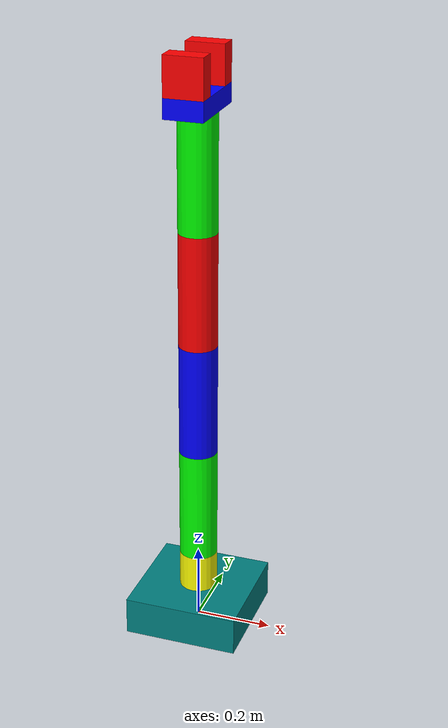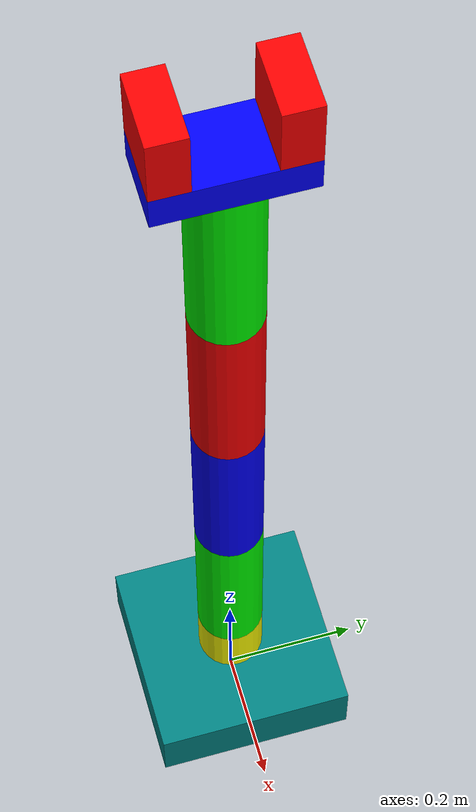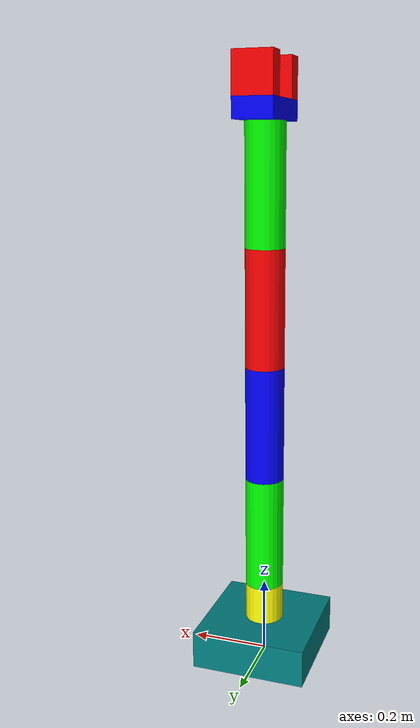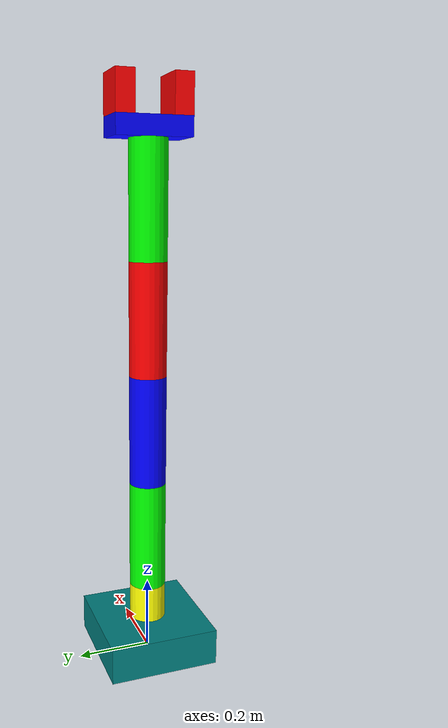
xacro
<?xml version="1.0"?>
<robot xmlns:xacro="http://www.ros.org/wiki/xacro" name="arm">
    <xacro:arg name="initial_positions_file" default="initial_positions.yaml" />

    <!-- Import arm urdf file -->
    <xacro:include filename="$(find arm1)/urdf/robot_arm.urdf" />

    <!--添加Gazebo所需的专有标签-->
    <gazebo>
        <!--添加world-joint使机械臂固定在仿真场景中-->
        <joint name="world_joint" type="fixed">
            <parent>world</parent>
            <child>base_link</child>
        </joint>
        <plugin filename="gz_ros2_control-system" name="gz_ros2_control::GazeboSimROS2ControlPlugin">
            <parameters>$(find robot_arm_config)/config/ros2_controllers.yaml</parameters>
        </plugin>
    </gazebo>
    <gazebo reference="hand_right_link">
		<mu1>20.0</mu1>
		<mu2>20.0</mu2>
		<kp>30000</kp>
		<kd>15</kd>
	</gazebo>
	<gazebo reference="hand_left_link">
		<mu1>20.0</mu1>
		<mu2>20.0</mu2>
		<kp>30000</kp>
		<kd>15</kd>
	</gazebo>

    <!-- Import control_xacro -->
    <xacro:include filename="arm.gazebo.ros2_control.xacro" />

    <xacro:arm_ros2_control name="GazeboSimSystem"
        initial_positions_file="$(arg initial_positions_file)" />

</robot>

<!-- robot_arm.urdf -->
<robot name="arm">
	<link name="base_link">
		<inertial>
			<origin xyz="0.0 0.0 0.05" rpy="0.0 0.0 0.0"></origin>
			<mass value="1"></mass>
			<inertia ixx="0.01" ixy="0.0" ixz="0.0" iyy="0.01" iyz="0.0" izz="0.001"></inertia>
		</inertial>
		<visual>
			<origin xyz="0.0 0.0 0.05" rpy="0.0 0.0 0.0"></origin>
			<geometry>
				<box size="0.3 0.3 0.1"></box>
			</geometry>
			<material name="Cyan1">
				<color rgba="0 0.5 0.5 1"></color>
			</material>
		</visual>
		<collision>
			<origin xyz="0.0 0.0 0.05" rpy="0.0 0.0 0.0"></origin>
			<geometry>
				<box size="0.3 0.3 0.1"></box>
			</geometry>
		</collision>
	</link>
	<link name="link1">
		<inertial>
			<origin xyz="0.0 0.0 0.0" rpy="0.0 0.0 0.0"></origin>
			<mass value="1"></mass>
			<inertia ixx="0.01" ixy="0.0" ixz="0.0" iyy="0.01" iyz="0.0" izz="0.001"></inertia>
		</inertial>
		<visual>
			<origin xyz="0.0 0.0 0.05" rpy="0.0 0.0 0.0"></origin>
			<geometry>
				<cylinder radius="0.05" length="0.1"></cylinder>
			</geometry>
			<material name="Cyan2">
				<color rgba="1.0 1.0 0.0 1.0"></color>
			</material>
		</visual>
		<collision>
			<origin xyz="0.0 0.0 0.0" rpy="0.0 0.0 0.0"></origin>
			<geometry>
				<cylinder radius="0.05" length="0.1"></cylinder>
			</geometry>
		</collision>
	</link>
	<link name="link2">
		<inertial>
			<origin xyz="0.0 0.0 0.15" rpy="0.0 0.0 0.0"></origin>
			<mass value="1"></mass>
			<inertia ixx="0.01" ixy="0.0" ixz="0.0" iyy="0.01" iyz="0.0" izz="0.001"></inertia>
		</inertial>
		<visual>
			<origin xyz="0.0 0.0 0.15" rpy="0.0 0.0 0.0"></origin>
			<geometry>
				<cylinder radius="0.05" length="0.3"></cylinder>
			</geometry>
			<material name="Cyan3">
				<color rgba="0.0 1.0 0.0 1.0"></color>
			</material>
		</visual>
		<collision>
			<origin xyz="0.0 0.0 0.15" rpy="0.0 0.0 0.0"></origin>
			<geometry>
				<cylinder radius="0.05" length="0.3"></cylinder>
			</geometry>
		</collision>
	</link>
	<link name="link3">
		<inertial>
			<origin xyz="0.0 0.0 0.15" rpy="0.0 0.0 0.0"></origin>
			<mass value="1"></mass>
			<inertia ixx="0.01" ixy="0.0" ixz="0.0" iyy="0.01" iyz="0.0" izz="0.001"></inertia>
		</inertial>
		<visual>
			<origin xyz="0.0 0.0 0.15" rpy="0.0 0.0 0.0"></origin>
			<geometry>
				<cylinder radius="0.05" length="0.3"></cylinder>
			</geometry>
			<material name="Cyan4">
				<color rgba="0.0 0.0 1.0 1.0"></color>
			</material>
		</visual>
		<collision>
			<origin xyz="0.0 0.0 0.15" rpy="0.0 0.0 0.0"></origin>
			<geometry>
				<cylinder radius="0.05" length="0.3"></cylinder>
			</geometry>
		</collision>
	</link>
	<link name="link4">
		<inertial>
			<origin xyz="0.0 0.0 0.15" rpy="0.0 0.0 0.0"></origin>
			<mass value="1"></mass>
			<inertia ixx="0.01" ixy="0.0" ixz="0.0" iyy="0.01" iyz="0.0" izz="0.001"></inertia>
		</inertial>
		<visual>
			<origin xyz="0.0 0.0 0.15" rpy="0.0 0.0 0.0"></origin>
			<geometry>
				<cylinder radius="0.05" length="0.3"></cylinder>
			</geometry>
			<material name="Cyan5">
				<color rgba="1.0 0.0 0.0 1.0"></color>
			</material>
		</visual>
		<collision>
			<origin xyz="0.0 0.0 0.15" rpy="0.0 0.0 0.0"></origin>
			<geometry>
				<cylinder radius="0.05" length="0.3"></cylinder>
			</geometry>
		</collision>
	</link>
	<link name="link5">
		<inertial>
			<origin xyz="0.0 0.0 0.15" rpy="0.0 0.0 0.0"></origin>
			<mass value="1"></mass>
			<inertia ixx="0.01" ixy="0.0" ixz="0.0" iyy="0.01" iyz="0.0" izz="0.001"></inertia>
		</inertial>
		<visual>
			<origin xyz="0.0 0.0 0.15" rpy="0.0 0.0 0.0"></origin>
			<geometry>
				<cylinder radius="0.05" length="0.3"></cylinder>
			</geometry>
			<material name="Cyan6">
				<color rgba="0.0 1.0 0.0 1.0"></color>
			</material>
		</visual>
		<collision>
			<origin xyz="0.0 0.0 0.15" rpy="0.0 0.0 0.0"></origin>
			<geometry>
				<cylinder radius="0.05" length="0.3"></cylinder>
			</geometry>
		</collision>
	</link>
	<link name="gripper_base_link">
		<inertial>
			<origin xyz="0.0 0.0 0.025" rpy="0.0 0.0 0.0"></origin>
			<mass value="1"></mass>
			<inertia ixx="0.01" ixy="0.0" ixz="0.0" iyy="0.01" iyz="0.0" izz="0.001"></inertia>
		</inertial>
		<visual>
			<origin xyz="0.0 0.0 0.025" rpy="0.0 0.0 0.0"></origin>
			<geometry>
				<box size="0.1 0.2 0.05"></box>
			</geometry>
			<material name="Cyan7">
				<color rgba="0.0 0.0 1.0 1.0"></color>
			</material>
		</visual>
		<collision>
			<origin xyz="0.0 0.0 0.025" rpy="0.0 0.0 0.0"></origin>
			<geometry>
				<box size="0.1 0.2 0.05"></box>
			</geometry>
		</collision>
	</link>
	<link name="hand_right_link">
		<inertial>
			<origin xyz="0.0 0.0 0.05" rpy="0.0 0.0 0.0"></origin>
			<mass value="1"></mass>
			<inertia ixx="0.01" ixy="0.0" ixz="0.0" iyy="0.01" iyz="0.0" izz="0.001"></inertia>
		</inertial>
		<visual>
			<origin xyz="0.0 0.0 0.05" rpy="0.0 0.0 0.0"></origin>
			<geometry>
				<box size="0.1 0.05 0.1"></box>
			</geometry>
			<material name="Cyan8">
				<color rgba="1.0 0.0 0.0 1.0"></color>
			</material>
		</visual>
		<collision>
			<origin xyz="0.0 0.0 0.05" rpy="0.0 0.0 0.0"></origin>
			<geometry>
				<box size="0.1 0.05 0.1"></box>
			</geometry>
		</collision>
	</link>
	<link name="hand_left_link">
		<inertial>
			<origin xyz="0.0 0.0 0.05" rpy="0.0 0.0 0.0"></origin>
			<mass value="1"></mass>
			<inertia ixx="0.01" ixy="0.0" ixz="0.0" iyy="0.01" iyz="0.0" izz="0.001"></inertia>
		</inertial>
		<visual>
			<origin xyz="0.0 0.0 0.05" rpy="0.0 0.0 0.0"></origin>
			<geometry>
				<box size="0.1 0.05 0.1"></box>
			</geometry>
			<material name="Cyan9">
				<color rgba="1.0 0.0 0.0 1.0"></color>
			</material>
		</visual>
		<collision>
			<origin xyz="0.0 0.0 0.05" rpy="0.0 0.0 0.0"></origin>
			<geometry>
				<box size="0.1 0.05 0.1"></box>
			</geometry>
		</collision>
	</link>

	<!-- joint部分-->
	<joint name="joint1" type="revolute">
		<origin xyz="0.0 0.0 0.1" rpy="0.0 0.0 0.0"></origin>
		<parent link="base_link"></parent>
		<child link="link1"></child>
		<axis xyz="0 0 1"></axis>
		<limit effort="100.0" lower="-3.14" upper="3.14" velocity="1"></limit>
	</joint>
	<joint name="joint2" type="revolute">
		<origin xyz="0.0 0.0 0.1" rpy="0.0 0.0 0.0"></origin>
		<parent link="link1"></parent>
		<child link="link2"></child>
		<axis xyz="1 0 0"></axis>
		<limit effort="100.0" lower="-3.14" upper="3.14" velocity="1"></limit>
	</joint>
	<joint name="joint3" type="revolute">
		<origin xyz="0.0 0.0 0.3" rpy="0.0 0.0 0.0"></origin>
		<parent link="link2"></parent>
		<child link="link3"></child>
		<axis xyz="1 0 0"></axis>
		<limit effort="100.0" lower="-3.14" upper="3.14" velocity="1"></limit>
	</joint>
	<joint name="joint4" type="revolute">
		<origin xyz="0.0 0.0 0.3" rpy="0.0 0.0 0.0"></origin>
		<parent link="link3"></parent>
		<child link="link4"></child>
		<axis xyz="1 0 0"></axis>
		<limit effort="100.0" lower="-3.14" upper="3.14" velocity="1"></limit>
	</joint>
	<joint name="joint5" type="revolute">
		<origin xyz="0.0 0.0 0.3" rpy="0.0 0.0 0.0"></origin>
		<parent link="link4"></parent>
		<child link="link5"></child>
		<axis xyz="1 0 0"></axis>
		<limit effort="100.0" lower="-3.14" upper="3.14" velocity="1"></limit>
	</joint>
	<joint name="joint6" type="revolute">
		<origin xyz="0.0 0.0 0.3" rpy="0.0 0.0 0.0"></origin>
		<parent link="link5"></parent>
		<child link="gripper_base_link"></child>
		<axis xyz="0 0 1"></axis>
		<limit effort="100.0" lower="-3.14" upper="3.14" velocity="1"></limit>
	</joint>
	<joint name="hand_right_joint" type="prismatic">
		<origin xyz="0.0 -0.075 0.05" rpy="0.0 0.0 0.0"></origin>
		<parent link="gripper_base_link"></parent>
		<child link="hand_right_link"></child>
		<axis xyz="0 1 0"></axis>
		<limit effort="3000.0" lower="0" upper="0.05" velocity="0.03"></limit>
	</joint>
	<joint name="hand_left_joint" type="prismatic">
		<origin xyz="0.0 0.075 0.05" rpy="0.0 0.0 0.0"></origin>
		<parent link="gripper_base_link"></parent>
		<child link="hand_left_link"></child>
		<axis xyz="0 -1 0"></axis>
		<limit effort="3000.0" lower="0" upper="0.05" velocity="0.03"></limit>
		<mimic joint="hand_right_joint"></mimic>
	</joint>
</robot>
